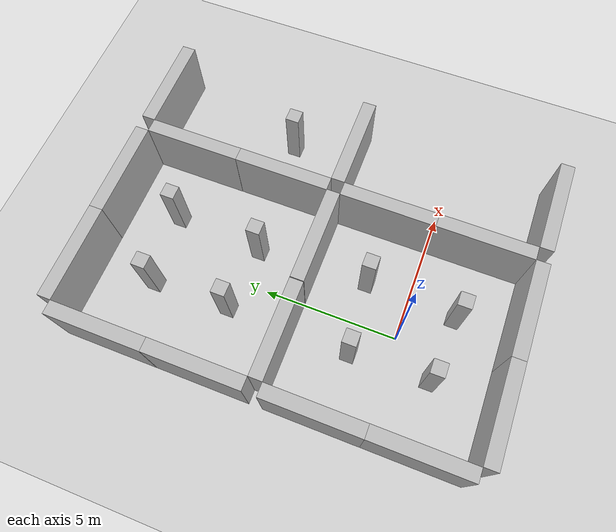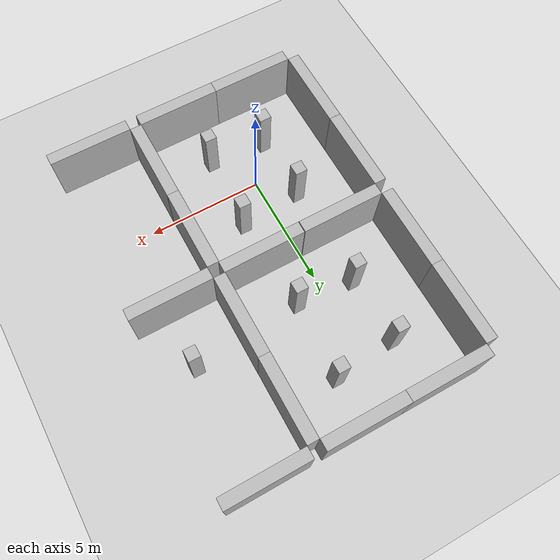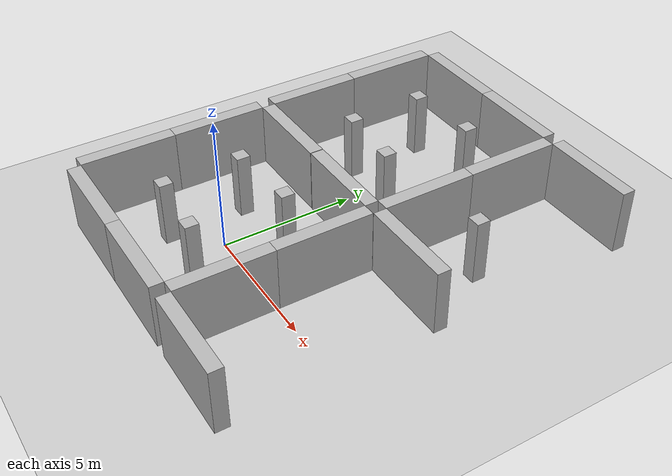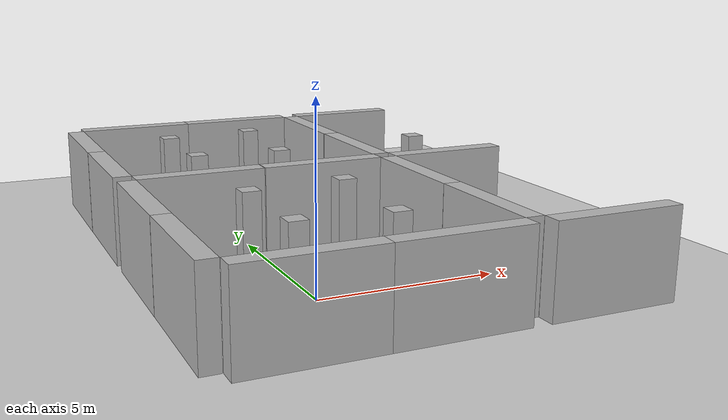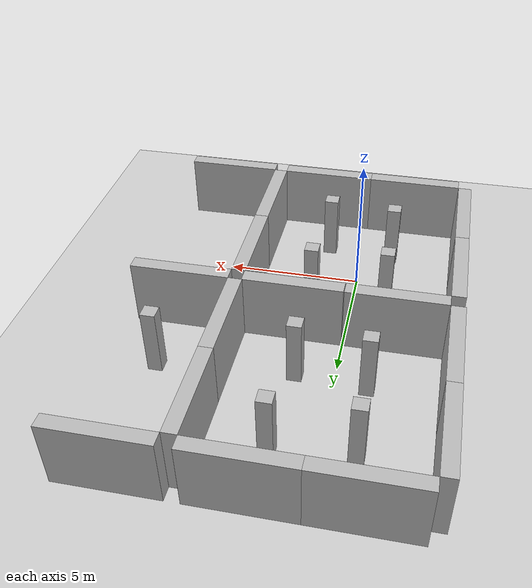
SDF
<sdf version="1.6">
 <world name="default">
  <model name="ground_plane">
   <static>1</static>
   <link name="link">
    <collision name="collision">
     <geometry><plane><normal>0 0 1</normal><size>100 100</size></plane></geometry>
     <surface><friction><ode><mu>100</mu><mu2>50</mu2></ode></friction></surface>
    </collision>
    <visual name="visual">
     <cast_shadows>0</cast_shadows>
     <geometry><plane><normal>0 0 1</normal><size>100 100</size></plane></geometry>
     <material>
      <script><uri>file://media/materials/scripts/gazebo.material</uri><name>Gazebo/Grey</name></script>
     </material>
    </visual>
   </link>
  </model>
  <model name="mywall0_0">
   <static>1</static>
   <link name="link">
    <pose>0 0 1.4 0 -0 0</pose>
    <collision name="collision"><geometry><box><size>3.5 0.5 2.4</size></box></geometry></collision>
    <visual name="visual">
     <cast_shadows>0</cast_shadows>
     <geometry><box><size>3.5 0.5 2.4</size></box></geometry>
     <material>
      <script>
       <uri>model://mywall0/materials/scripts</uri>
       <uri>model://mywall0/materials/textures</uri>
       <name>vrc/mywall0</name>
      </script>
     </material>
    </visual>
   </link>
   <pose>1.77534 3.75 0 0 -0 0</pose>
  </model>
  <model name="mywall0_1">
   <static>1</static>
   <link name="link">
    <pose>0 0 1.4 0 -0 0</pose>
    <collision name="collision"><geometry><box><size>3.5 0.5 2.4</size></box></geometry></collision>
    <visual name="visual">
     <cast_shadows>0</cast_shadows>
     <geometry><box><size>3.5 0.5 2.4</size></box></geometry>
     <material>
      <script>
       <uri>model://mywall0/materials/scripts</uri>
       <uri>model://mywall0/materials/textures</uri>
       <name>vrc/mywall0</name>
      </script>
     </material>
    </visual>
   </link>
   <pose>-1.74865 3.75 0 0 -0 0</pose>
  </model>
  <model name="mywall0_2">
   <static>1</static>
   <link name="link">
    <pose>0 0 1.4 0 -0 0</pose>
    <collision name="collision"><geometry><box><size>3.5 0.5 2.4</size></box></geometry></collision>
    <visual name="visual">
     <cast_shadows>0</cast_shadows>
     <geometry><box><size>3.5 0.5 2.4</size></box></geometry>
     <material>
      <script>
       <uri>model://mywall0/materials/scripts</uri>
       <uri>model://mywall0/materials/textures</uri>
       <name>vrc/mywall0</name>
      </script>
     </material>
    </visual>
   </link>
   <pose>-1.73951 -3.75 0 0 -0 0</pose>
  </model>
  <model name="mywall0_3">
   <static>1</static>
   <link name="link">
    <pose>0 0 1.4 0 -0 0</pose>
    <collision name="collision"><geometry><box><size>3.5 0.5 2.4</size></box></geometry></collision>
    <visual name="visual">
     <cast_shadows>0</cast_shadows>
     <geometry><box><size>3.5 0.5 2.4</size></box></geometry>
     <material>
      <script>
       <uri>model://mywall0/materials/scripts</uri>
       <uri>model://mywall0/materials/textures</uri>
       <name>vrc/mywall0</name>
      </script>
     </material>
    </visual>
   </link>
   <pose>1.75778 -3.75 0 0 -0 0</pose>
  </model>
  <model name="mywall0_4">
   <static>1</static>
   <link name="link">
    <pose>0 0 1.4 0 -0 0</pose>
    <collision name="collision"><geometry><box><size>3.5 0.5 2.4</size></box></geometry></collision>
    <visual name="visual">
     <cast_shadows>0</cast_shadows>
     <geometry><box><size>3.5 0.5 2.4</size></box></geometry>
     <material>
      <script>
       <uri>model://mywall0/materials/scripts</uri>
       <uri>model://mywall0/materials/textures</uri>
       <name>vrc/mywall0</name>
      </script>
     </material>
    </visual>
   </link>
   <pose>-3.75 1.75 0 0 -0 1.57</pose>
  </model>
  <model name="mywall0_4_clone">
   <static>1</static>
   <link name="link">
    <pose>0 0 1.4 0 -0 0</pose>
    <collision name="collision"><geometry><box><size>3.5 0.5 2.4</size></box></geometry></collision>
    <visual name="visual">
     <cast_shadows>0</cast_shadows>
     <geometry><box><size>3.5 0.5 2.4</size></box></geometry>
     <material>
      <script>
       <uri>model://mywall0/materials/scripts</uri>
       <uri>model://mywall0/materials/textures</uri>
       <name>vrc/mywall0</name>
      </script>
     </material>
    </visual>
   </link>
   <pose>-3.7504 -1.75075 0 0 -0 1.57</pose>
  </model>
  <model name="mywall0_4_clone_0">
   <static>1</static>
   <link name="link">
    <pose>0 0 1.4 0 -0 0</pose>
    <collision name="collision"><geometry><box><size>3.5 0.5 2.4</size></box></geometry></collision>
    <visual name="visual">
     <cast_shadows>0</cast_shadows>
     <geometry><box><size>3.5 0.5 2.4</size></box></geometry>
     <material>
      <script>
       <uri>model://mywall0/materials/scripts</uri>
       <uri>model://mywall0/materials/textures</uri>
       <name>vrc/mywall0</name>
      </script>
     </material>
    </visual>
   </link>
   <pose>3.75 1.75 0 0 -0 1.57</pose>
  </model>
  <model name="mywall0_4_clone_1">
   <static>1</static>
   <link name="link">
    <pose>0 0 1.4 0 -0 0</pose>
    <collision name="collision"><geometry><box><size>3.5 0.5 2.4</size></box></geometry></collision>
    <visual name="visual">
     <cast_shadows>0</cast_shadows>
     <geometry><box><size>3.5 0.5 2.4</size></box></geometry>
     <material>
      <script>
       <uri>model://mywall0/materials/scripts</uri>
       <uri>model://mywall0/materials/textures</uri>
       <name>vrc/mywall0</name>
      </script>
     </material>
    </visual>
   </link>
   <pose>3.75 -1.75 0 0 -0 1.57</pose>
  </model>
  <model name="mywall0_1_clone">
   <static>1</static>
   <link name="link">
    <pose>0 0 1.4 0 -0 0</pose>
    <collision name="collision"><geometry><box><size>3.5 0.5 2.4</size></box></geometry></collision>
    <visual name="visual">
     <cast_shadows>0</cast_shadows>
     <geometry><box><size>3.5 0.5 2.4</size></box></geometry>
     <material>
      <script>
       <uri>model://mywall0/materials/scripts</uri>
       <uri>model://mywall0/materials/textures</uri>
       <name>vrc/mywall0</name>
      </script>
     </material>
    </visual>
   </link>
   <pose>5.7511 3.75831 0 0 -0 0</pose>
  </model>
  <model name="mywall0_3_clone">
   <static>1</static>
   <link name="link">
    <pose>0 0 1.4 0 -0 0</pose>
    <collision name="collision"><geometry><box><size>3.5 0.5 2.4</size></box></geometry></collision>
    <visual name="visual">
     <cast_shadows>0</cast_shadows>
     <geometry><box><size>3.5 0.5 2.4</size></box></geometry>
     <material>
      <script>
       <uri>model://mywall0/materials/scripts</uri>
       <uri>model://mywall0/materials/textures</uri>
       <name>vrc/mywall0</name>
      </script>
     </material>
    </visual>
   </link>
   <pose>5.75 -3.75829 0 0 -0 0</pose>
  </model>
  <model name="mywall0_4_clone_0_clone_clone_0_clone_2">
   <static>1</static>
   <link name="link">
    <pose>0 0 1.4 0 -0 0</pose>
    <collision name="collision"><geometry><box><size>3.5 0.5 2.4</size></box></geometry></collision>
    <visual name="visual">
     <cast_shadows>0</cast_shadows>
     <geometry><box><size>3.5 0.5 2.4</size></box></geometry>
     <material>
      <script>
       <uri>model://mywall0/materials/scripts</uri>
       <uri>model://mywall0/materials/textures</uri>
       <name>vrc/mywall0</name>
      </script>
     </material>
    </visual>
   </link>
   <pose>-3.75 5.75 0 0 -0 1.57</pose>
  </model>
  <model name="mywall0_4_clone_0_clone_clone_0_clone_3">
   <static>1</static>
   <link name="link">
    <pose>0 0 1.4 0 -0 0</pose>
    <collision name="collision"><geometry><box><size>3.5 0.5 2.4</size></box></geometry></collision>
    <visual name="visual">
     <cast_shadows>0</cast_shadows>
     <geometry><box><size>3.5 0.5 2.4</size></box></geometry>
     <material>
      <script>
       <uri>model://mywall0/materials/scripts</uri>
       <uri>model://mywall0/materials/textures</uri>
       <name>vrc/mywall0</name>
      </script>
     </material>
    </visual>
   </link>
   <pose>-3.75 9.25 0 0 -0 1.57</pose>
  </model>
  <model name="mywall0_4_clone_0_clone_clone_0_clone_4">
   <static>1</static>
   <link name="link">
    <pose>0 0 1.4 0 -0 0</pose>
    <collision name="collision"><geometry><box><size>3.5 0.5 2.4</size></box></geometry></collision>
    <visual name="visual">
     <cast_shadows>0</cast_shadows>
     <geometry><box><size>3.5 0.5 2.4</size></box></geometry>
     <material>
      <script>
       <uri>model://mywall0/materials/scripts</uri>
       <uri>model://mywall0/materials/textures</uri>
       <name>vrc/mywall0</name>
      </script>
     </material>
    </visual>
   </link>
   <pose>3.75 5.75 0 0 -0 1.57</pose>
  </model>
  <model name="mywall0_4_clone_0_clone_clone_0_clone_5">
   <static>1</static>
   <link name="link">
    <pose>0 0 1.4 0 -0 0</pose>
    <collision name="collision"><geometry><box><size>3.5 0.5 2.4</size></box></geometry></collision>
    <visual name="visual">
     <cast_shadows>0</cast_shadows>
     <geometry><box><size>3.5 0.5 2.4</size></box></geometry>
     <material>
      <script>
       <uri>model://mywall0/materials/scripts</uri>
       <uri>model://mywall0/materials/textures</uri>
       <name>vrc/mywall0</name>
      </script>
     </material>
    </visual>
   </link>
   <pose>3.75 9.25 0 0 -0 1.57</pose>
  </model>
  <model name="mywall0_1_clone_1_clone_3_clone_4">
   <static>1</static>
   <link name="link">
    <pose>0 0 1.4 0 -0 0</pose>
    <collision name="collision"><geometry><box><size>3.5 0.5 2.4</size></box></geometry></collision>
    <visual name="visual">
     <cast_shadows>0</cast_shadows>
     <geometry><box><size>3.5 0.5 2.4</size></box></geometry>
     <material>
      <script>
       <uri>model://mywall0/materials/scripts</uri>
       <uri>model://mywall0/materials/textures</uri>
       <name>vrc/mywall0</name>
      </script>
     </material>
    </visual>
   </link>
   <pose>5.75 11.25 0 0 -0 0</pose>
  </model>
  <model name="mywall0_1_clone_1_clone_3_clone_5">
   <static>1</static>
   <link name="link">
    <pose>0 0 1.4 0 -0 0</pose>
    <collision name="collision"><geometry><box><size>3.5 0.5 2.4</size></box></geometry></collision>
    <visual name="visual">
     <cast_shadows>0</cast_shadows>
     <geometry><box><size>3.5 0.5 2.4</size></box></geometry>
     <material>
      <script>
       <uri>model://mywall0/materials/scripts</uri>
       <uri>model://mywall0/materials/textures</uri>
       <name>vrc/mywall0</name>
      </script>
     </material>
    </visual>
   </link>
   <pose>-1.75 11.25 0 0 -0 0</pose>
  </model>
  <model name="mywall0_1_clone_1_clone_3_clone_6">
   <static>1</static>
   <link name="link">
    <pose>0 0 1.4 0 -0 0</pose>
    <collision name="collision"><geometry><box><size>3.5 0.5 2.4</size></box></geometry></collision>
    <visual name="visual">
     <cast_shadows>0</cast_shadows>
     <geometry><box><size>3.5 0.5 2.4</size></box></geometry>
     <material>
      <script>
       <uri>model://mywall0/materials/scripts</uri>
       <uri>model://mywall0/materials/textures</uri>
       <name>vrc/mywall0</name>
      </script>
     </material>
    </visual>
   </link>
   <pose>1.75 11.25 0 0 -0 0</pose>
  </model>
  <model name="mypillar_clone_0">
   <static>1</static>
   <link name="link">
    <pose>0 0 1.4 0 -0 0</pose>
    <collision name="collision"><geometry><box><size>0.5 0.5 2.4</size></box></geometry></collision>
    <visual name="visual">
     <cast_shadows>0</cast_shadows>
     <geometry><box><size>0.5 0.5 2.4</size></box></geometry>
     <material>
      <script>
       <uri>model://mypillar/materials/scripts</uri>
       <uri>model://mypillar/materials/textures</uri>
       <name>vrc/mypillar</name>
      </script>
     </material>
    </visual>
   </link>
   <pose>-1.2 1.4 0 0 -0 0</pose>
  </model>
  <model name="mypillar_clone_clone">
   <static>1</static>
   <link name="link">
    <pose>0 0 1.4 0 -0 0</pose>
    <collision name="collision"><geometry><box><size>0.5 0.5 2.4</size></box></geometry></collision>
    <visual name="visual">
     <cast_shadows>0</cast_shadows>
     <geometry><box><size>0.5 0.5 2.4</size></box></geometry>
     <material>
      <script>
       <uri>model://mypillar/materials/scripts</uri>
       <uri>model://mypillar/materials/textures</uri>
       <name>vrc/mypillar</name>
      </script>
     </material>
    </visual>
   </link>
   <pose>-1.15 -1.5 0 0 -0 0</pose>
  </model>
  <model name="mypillar_0_clone">
   <static>1</static>
   <link name="link">
    <pose>0 0 1.4 0 -0 0</pose>
    <collision name="collision"><geometry><box><size>0.5 0.5 2.4</size></box></geometry></collision>
    <visual name="visual">
     <cast_shadows>0</cast_shadows>
     <geometry><box><size>0.5 0.5 2.4</size></box></geometry>
     <material>
      <script>
       <uri>model://mypillar/materials/scripts</uri>
       <uri>model://mypillar/materials/textures</uri>
       <name>vrc/mypillar</name>
      </script>
     </material>
    </visual>
   </link>
   <pose>1.3 -1.7 0 0 -0 0</pose>
  </model>
  <model name="mypillar_1_clone">
   <static>1</static>
   <link name="link">
    <pose>0 0 1.4 0 -0 0</pose>
    <collision name="collision"><geometry><box><size>0.5 0.5 2.4</size></box></geometry></collision>
    <visual name="visual">
     <cast_shadows>0</cast_shadows>
     <geometry><box><size>0.5 0.5 2.4</size></box></geometry>
     <material>
      <script>
       <uri>model://mypillar/materials/scripts</uri>
       <uri>model://mypillar/materials/textures</uri>
       <name>vrc/mypillar</name>
      </script>
     </material>
    </visual>
   </link>
   <pose>1.5 1.65 0 0 -0 0</pose>
  </model>
  <model name="mypillar_clone_0_clone">
   <static>1</static>
   <link name="link">
    <pose>0 0 1.4 0 -0 0</pose>
    <collision name="collision"><geometry><box><size>0.5 0.5 2.4</size></box></geometry></collision>
    <visual name="visual">
     <cast_shadows>0</cast_shadows>
     <geometry><box><size>0.5 0.5 2.4</size></box></geometry>
     <material>
      <script>
       <uri>model://mypillar/materials/scripts</uri>
       <uri>model://mypillar/materials/textures</uri>
       <name>vrc/mypillar</name>
      </script>
     </material>
    </visual>
   </link>
   <pose>-1.2 8.9 0 0 -0 0</pose>
  </model>
  <model name="mypillar_clone_0_clone_0">
   <static>1</static>
   <link name="link">
    <pose>0 0 1.4 0 -0 0</pose>
    <collision name="collision"><geometry><box><size>0.5 0.5 2.4</size></box></geometry></collision>
    <visual name="visual">
     <cast_shadows>0</cast_shadows>
     <geometry><box><size>0.5 0.5 2.4</size></box></geometry>
     <material>
      <script>
       <uri>model://mypillar/materials/scripts</uri>
       <uri>model://mypillar/materials/textures</uri>
       <name>vrc/mypillar</name>
      </script>
     </material>
    </visual>
   </link>
   <pose>-1.15 6 0 0 -0 0</pose>
  </model>
  <model name="mypillar_clone_0_clone_1">
   <static>1</static>
   <link name="link">
    <pose>0 0 1.4 0 -0 0</pose>
    <collision name="collision"><geometry><box><size>0.5 0.5 2.4</size></box></geometry></collision>
    <visual name="visual">
     <cast_shadows>0</cast_shadows>
     <geometry><box><size>0.5 0.5 2.4</size></box></geometry>
     <material>
      <script>
       <uri>model://mypillar/materials/scripts</uri>
       <uri>model://mypillar/materials/textures</uri>
       <name>vrc/mypillar</name>
      </script>
     </material>
    </visual>
   </link>
   <pose>1.5 9.15 0 0 -0 0</pose>
  </model>
  <model name="mypillar_clone_0_clone_2">
   <static>1</static>
   <link name="link">
    <pose>0 0 1.4 0 -0 0</pose>
    <collision name="collision"><geometry><box><size>0.5 0.5 2.4</size></box></geometry></collision>
    <visual name="visual">
     <cast_shadows>0</cast_shadows>
     <geometry><box><size>0.5 0.5 2.4</size></box></geometry>
     <material>
      <script>
       <uri>model://mypillar/materials/scripts</uri>
       <uri>model://mypillar/materials/textures</uri>
       <name>vrc/mypillar</name>
      </script>
     </material>
    </visual>
   </link>
   <pose>1.3 5.8 0 0 -0 0</pose>
  </model>
  <model name="mypillar_clone_0_clone_1_clone_0">
   <static>1</static>
   <link name="link">
    <pose>0 0 1.4 0 -0 0</pose>
    <collision name="collision"><geometry><box><size>0.5 0.5 2.4</size></box></geometry></collision>
    <visual name="visual">
     <cast_shadows>0</cast_shadows>
     <geometry><box><size>0.5 0.5 2.4</size></box></geometry>
     <material>
      <script>
       <uri>model://mypillar/materials/scripts</uri>
       <uri>model://mypillar/materials/textures</uri>
       <name>vrc/mypillar</name>
      </script>
     </material>
    </visual>
   </link>
   <pose>6.00869 6.21238 0 0 -0 0</pose>
  </model>
 </world>
</sdf>
